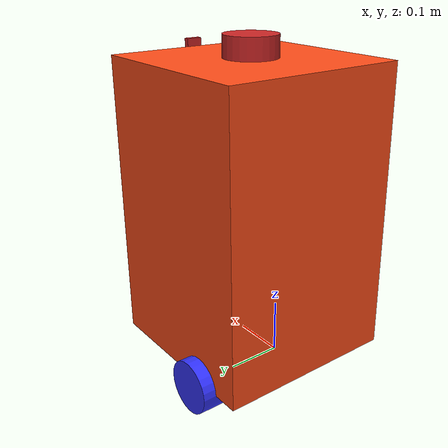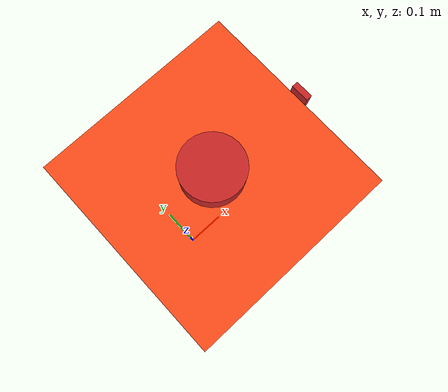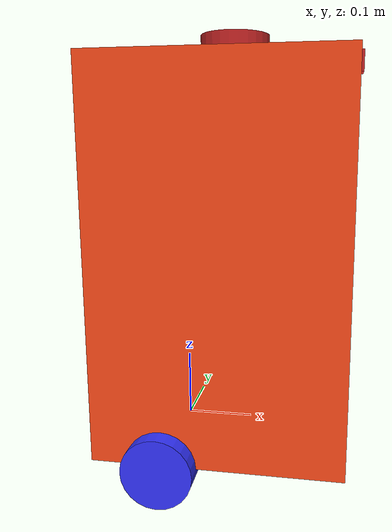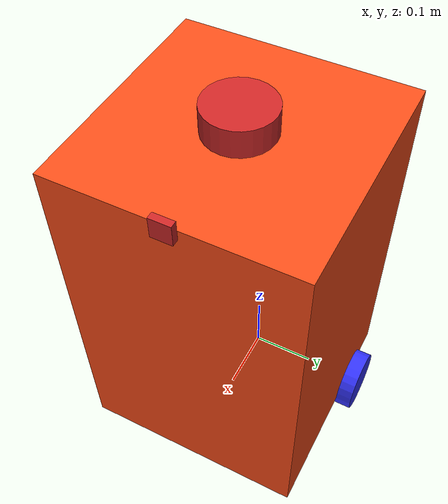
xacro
<?xml version="1.0"?>
<robot xmlns:xacro="http://www.ros.org/wiki/xacro"  name="robot">

    <!-- Include the robot's core body description file -->
    <xacro:include filename="robot_core.xacro" />

    <!-- Include the gazebo control plugin that controls driving -->
    <xacro:include filename="gazebo_control.xacro" />

    <!-- Include the lidar sensor -->
    <xacro:include filename="lidar.xacro" />

    <!-- Include the camera sensor -->
    <xacro:include filename="camera.xacro" />

    <!-- Include the gps sensor -->
    <xacro:include filename="gps.xacro" />

    <!-- Include the imu sensor -->
    <xacro:include filename="imu.xacro" />

</robot>

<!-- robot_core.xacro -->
<robot xmlns:xacro="http://www.ros.org/wiki/xacro" >

    <!-- INCLUDES -->

    <xacro:include filename="inertial_macros.xacro"/>
    <xacro:include filename="colors.xacro"/>
    <xacro:include filename="robot_params.xacro"/>

    <!-- BASE LINK -->

    <link name="base_link">

    </link>

    <!-- CHASSIS LINK -->

    <joint name="chassis_joint" type="fixed">
        <parent link="base_link"/>
        <child link="chassis"/>
        <origin xyz="${-wheel_offset_x} 0 0"/>
    </joint>

    <link name="chassis">
        <visual>
            <origin xyz="${chassis_length/2} 0 ${chassis_height/2}"/>
            <geometry>
                <box size="${chassis_length} ${chassis_width} ${chassis_height}"/>
            </geometry>
            <material name="orange"/>
        </visual>
        <collision>
            <origin xyz="${chassis_length/2} 0 ${chassis_height/2}"/>
            <geometry>
                <box size="${chassis_length} ${chassis_width} ${chassis_height}"/>
            </geometry>
        </collision>
        <xacro:inertial_box mass="${chassis_mass}" x="${chassis_length}" y="${chassis_width}" z="${chassis_height}">
            <origin xyz="${chassis_length/2} 0 ${chassis_height/2}" rpy="0 0 0"/>
        </xacro:inertial_box>
    </link>

    <gazebo reference="chassis">
        <material>Gazebo/TIT</material>
    </gazebo>

    <!-- LEFT WHEEL LINK -->

    <joint name="left_wheel_joint" type="continuous">
        <parent link="base_link"/>
        <child link="left_wheel"/>
        <origin xyz="0 ${wheel_offset_y} 0" rpy="-${pi/2} 0 0" />
        <axis xyz="0 0 1"/>
    </joint>

    <link name="left_wheel">
        <visual>
            <geometry>
                <cylinder radius="${wheel_radius}" length="${wheel_thickness}"/>
            </geometry>
            <material name="blue"/>
        </visual>
        <collision>
            <geometry>
                <cylinder radius="${wheel_radius}" length="${wheel_thickness}"/>
            </geometry>
        </collision>
        <xacro:inertial_cylinder mass="${wheel_mass}" length="${wheel_thickness}" radius="${wheel_radius}">
            <origin xyz="0 0 0" rpy="0 0 0"/>
        </xacro:inertial_cylinder>
    </link>

    <gazebo reference="left_wheel">
        <material>Gazebo/Blue</material>
    </gazebo>

    <!-- RIGHT WHEEL LINK -->

    <joint name="right_wheel_joint" type="continuous">
        <parent link="base_link"/>
        <child link="right_wheel"/>
        <origin xyz="0 ${-wheel_offset_y} 0" rpy="${pi/2} 0 0" />
        <axis xyz="0 0 -1"/>
    </joint>

    <link name="right_wheel">
        <visual>
            <geometry>
                <cylinder radius="${wheel_radius}" length="${wheel_thickness}"/>
            </geometry>
            <material name="blue"/>
        </visual>
        <collision>
            <geometry>
                <cylinder radius="${wheel_radius}" length="${wheel_thickness}"/>
            </geometry>
        </collision>
        <xacro:inertial_cylinder mass="${wheel_mass}" length="${wheel_thickness}" radius="${wheel_radius}">
            <origin xyz="0 0 0" rpy="0 0 0"/>
        </xacro:inertial_cylinder>
    </link>

    <gazebo reference="right_wheel">
        <material>Gazebo/Blue</material>
    </gazebo>

    <!-- CASTER WHEEL LINK -->

    <joint name="caster_wheel_joint" type="fixed">
        <parent link="chassis"/>
        <child link="caster_wheel"/>
        <origin xyz="${caster_wheel_offset_x} 0 0"/>
    </joint>

    <link name="caster_wheel">
        <visual>
            <geometry>
                <sphere radius="${caster_wheel_radius}"/>
            </geometry>
            <material name="white"/>
        </visual>
        <collision>
            <geometry>
                <sphere radius="${caster_wheel_radius}"/>
            </geometry>
        </collision>
        <xacro:inertial_sphere mass="${caster_wheel_mass}" radius="${caster_wheel_radius}">
            <origin xyz="0 0 0" rpy="0 0 0"/>
        </xacro:inertial_sphere>
    </link>

    <gazebo reference="caster_wheel">
        <material>Gazebo/White</material>
        <mu1 value="0.01"/>
        <mu2 value="0.01"/>
    </gazebo>

</robot>

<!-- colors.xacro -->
<robot xmlns:xacro="http://www.ros.org/wiki/xacro" >

    <material name="white">
        <color rgba="1 1 1 1" />
    </material>

    <material name="orange">
        <color rgba="1 0.3 0.1 1"/>
    </material>

    <material name="blue">
        <color rgba="0.2 0.2 1 1"/>
    </material>

    <material name="black">
        <color rgba="0 0 0 1"/>
    </material>

</robot>

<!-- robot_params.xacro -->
<robot xmlns:xacro="http://www.ros.org/wiki/xacro" >

    <!-- PARAMETERS -->

    <!-- Robot Physical Dimensions -->
    <xacro:property name="chassis_length" value="0.35"/>
    <xacro:property name="chassis_width" value="0.35"/>
    <xacro:property name="chassis_height" value="0.55"/>
    <xacro:property name="chassis_mass" value="0.8"/>

    <xacro:property name="wheel_mass" value="0.05"/>
    <xacro:property name="wheel_radius" value="0.05"/>
    <xacro:property name="wheel_diameter" value="${wheel_radius * 2}"/>
    <xacro:property name="wheel_thickness" value="0.05"/>
    <xacro:property name="wheel_offset_x" value="0.1"/>
    <xacro:property name="wheel_offset_y" value="0.175"/>
    <xacro:property name="wheel_separation" value="${wheel_offset_y * 2}"/>

    <xacro:property name="caster_wheel_offset_x" value="0.24"/>
    <xacro:property name="caster_wheel_radius" value="0.05"/>
    <xacro:property name="caster_wheel_mass" value="0.1"/>

    <!-- LiDAR Parameters -->
    <xacro:property name="laser_mass" value="0.1"/>
    <xacro:property name="laser_length" value="0.04"/>
    <xacro:property name="laser_radius" value="0.05"/>
    <xacro:property name="laser_update_rate" value="5"/>
    <xacro:property name="laser_samples" value="360"/>
    <xacro:property name="laser_min_angle" value="-3.14"/>
    <xacro:property name="laser_max_angle" value="3.14"/>
    <xacro:property name="laser_min_range" value="0.2"/>
    <xacro:property name="laser_max_range" value="12"/>
    <xacro:property name="laser_noise_mean" value="0.0"/>
    <xacro:property name="laser_noise_stddev" value="0.01"/>

    <!-- Camera Parameters -->
    <xacro:property name="camera_mass" value="0.03"/>
    <xacro:property name="camera_length" value="0.01"/>
    <xacro:property name="camera_width" value="0.03"/>
    <xacro:property name="camera_height" value="0.03"/>
    <xacro:property name="camera_update_rate" value="5"/>
    <xacro:property name="camera_horizontal_fov" value="1.089"/>
    <xacro:property name="camera_image_width" value="640"/>
    <xacro:property name="camera_image_height" value="480"/>
    <xacro:property name="camera_clip_near" value="0.1"/>
    <xacro:property name="camera_clip_far" value="20.0"/>

    <!-- GPS Parameters -->
    <xacro:property name="gps_mass" value="0.05"/>
    <xacro:property name="gps_update_rate" value="1"/>
    <xacro:property name="gps_noise_stddev" value="0.01"/>

    <!-- IMU Parameters -->
    <xacro:property name="imu_mass" value="0.05"/>
    <xacro:property name="imu_update_rate" value="200"/>
    <xacro:property name="imu_angular_velocity_stddev" value="2e-4"/>
    <xacro:property name="imu_linear_acceleration_stddev" value="1.7e-2"/>

</robot>

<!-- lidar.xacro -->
<robot xmlns:xacro="http://www.ros.org/wiki/xacro" >

    <xacro:include filename="robot_params.xacro"/>

    <joint name="laser_joint" type="fixed">
        <parent link="chassis"/>
        <child link="laser_link"/>
        <origin xyz="${chassis_length/2} 0 ${chassis_height + laser_length/2}" rpy="0 0 0"/>
    </joint>

    <link name="laser_link">
        <visual>
            <geometry>
                <cylinder radius="${laser_radius}" length="${laser_length}"/>
            </geometry>
            <material name="red"/>
        </visual>
        <collision>
            <geometry>
                <cylinder radius="${laser_radius}" length="${laser_length}"/>
            </geometry>
        </collision>
        <xacro:inertial_cylinder mass="${laser_mass}" length="${laser_length}" radius="${laser_radius}">
            <origin xyz="0 0 0" rpy="0 0 0"/>
        </xacro:inertial_cylinder>
    </link>

    <gazebo reference="laser_link">
        <material>Gazebo/Red</material>

        <sensor name="laser" type="ray">
            <pose> 0 0 0 0 0 0 </pose>
            <visualize>true</visualize>
            <update_rate>${laser_update_rate}</update_rate>
            <ray>
                <scan>
                    <horizontal>
                        <samples>${laser_samples}</samples>
                        <min_angle>${laser_min_angle}</min_angle>
                        <max_angle>${laser_max_angle}</max_angle>
                    </horizontal>
                </scan>
                <range>
                    <min>${laser_min_range}</min>
                    <max>${laser_max_range}</max>
                </range>
            </ray>
            <plugin name="laser_controller" filename="libgazebo_ros_ray_sensor.so">
                <ros>
                    <remapping>~/out:=scan</remapping>
                </ros>
                <output_type>sensor_msgs/LaserScan</output_type>
                <frame_name>laser_link</frame_name>
            </plugin>
        </sensor>
    </gazebo>

</robot>

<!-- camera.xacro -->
<robot xmlns:xacro="http://www.ros.org/wiki/xacro" >

    <xacro:include filename="robot_params.xacro"/>

    <joint name="camera_joint" type="fixed">
        <parent link="chassis"/>
        <child link="camera_link"/>
        <origin xyz="${chassis_length + camera_length/2} 0 ${chassis_height}" rpy="0 0 0"/>
    </joint>

    <link name="camera_link">
        <visual>
            <geometry>
                <box size="${camera_length} ${camera_width} ${camera_height}"/>
            </geometry>
            <material name="red"/>
        </visual>
        <collision>
            <geometry>
                <box size="${camera_length} ${camera_width} ${camera_height}"/>
            </geometry>
        </collision>
    </link>

    <joint name="camera_optical_joint" type="fixed">
        <parent link="camera_link"/>
        <child link="camera_optical_link"/>
        <origin xyz="0 0 0" rpy="${-pi/2} 0 ${-pi/2}"/>
    </joint>

    <link name="camera_optical_link"></link>

    <gazebo reference="camera_link">
        <material>Gazebo/Red</material>

        <sensor name="camera" type="camera">
            <pose> 0 0 0 0 0 0 </pose>
            <visualize>false</visualize>
            <update_rate>${camera_update_rate}</update_rate>
            <camera>
                <horizontal_fov>${camera_horizontal_fov}</horizontal_fov>

                <image>
                    <format>R8G8B8</format>
                    <width>${camera_image_width}</width>
                    <height>${camera_image_height}</height>
                </image>
                <clip>
                    <near>${camera_clip_near}</near>
                    <far>${camera_clip_far}</far>
                </clip>
            </camera>
            <plugin name="camera_controller" filename="libgazebo_ros_camera.so">
                <frame_name>camera_optical_link</frame_name>
            </plugin>
        </sensor>
    </gazebo>

</robot>

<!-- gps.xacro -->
<robot xmlns:xacro="http://www.ros.org/wiki/xacro" >

    <xacro:include filename="inertial_macros.xacro"/>
    <xacro:include filename="robot_params.xacro"/>

    <joint name="gps_joint" type="fixed">
        <parent link="chassis"/>
        <child link="gps_link"/>
        <origin xyz="${chassis_length/2} 0 ${chassis_length/2}" rpy="0 0 0"/>
        <axis>
          <xyz>0 0 1</xyz>
        </axis>
    </joint>

    <link name="gps_link">
        <visual>
            <origin xyz="0 0 0" rpy="0 0 0"/>
            <geometry>
                <box size="0.01 0.01 0.01"/>
            </geometry>
        </visual>
        <collision>
            <origin xyz="0 0 0" rpy="0 0 0"/>
            <geometry>
                <box size="0.01 0.01 0.01"/>
            </geometry>
        </collision>
        <xacro:inertial_box mass="0.125" x="0.01" y="0.01" z="0.01">
            <origin xyz="-0.052 0 0.111" rpy="0 0 0"/>
        </xacro:inertial_box>

    </link>

    <gazebo reference="gps_link">
        <sensor name="gps" type="gps">
          <always_on>true</always_on>
          <update_rate>1</update_rate>
          <pose>0 0 0 0 0 0</pose>
          <gps>
            <position_sensing>
              <horizontal>
                <noise type="gaussian">
                  <mean>0.0</mean>
                  <stddev>0.01</stddev>
                </noise>
              </horizontal>
              <vertical>
                <noise type="gaussian">
                  <mean>0.0</mean>
                  <stddev>0.01</stddev>
                </noise>
              </vertical>
            </position_sensing>
          </gps>
          <plugin name="gps_plugin" filename="libgazebo_ros_gps_sensor.so">
            <ros>
              <remapping>~/out:=/gps/fix</remapping>
            </ros>
          </plugin>
        </sensor>
    </gazebo>

</robot>

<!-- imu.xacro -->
<robot xmlns:xacro="http://www.ros.org/wiki/xacro" >

    <xacro:include filename="robot_params.xacro"/>
    <joint name="imu_joint" type="fixed">
        <parent link="chassis"/>
        <child link="imu_link"/>
        <origin xyz="${chassis_length/2} 0 ${chassis_length/2}" rpy="0 0 0"/>
        <axis>
          <xyz>0 0 1</xyz>
        </axis>
    </joint>

    <link name="imu_link">
    </link>

    <gazebo reference="imu_link">
        <sensor name="imu" type="imu">
          <always_on>true</always_on>
          <update_rate>200</update_rate>
          <imu>
            <angular_velocity>
              <x>
                <noise type="gaussian">
                  <mean>0.0</mean>
                  <stddev>2e-4</stddev>
                </noise>
              </x>
              <y>
                <noise type="gaussian">
                  <mean>0.0</mean>
                  <stddev>2e-4</stddev>
                </noise>
              </y>
              <z>
                <noise type="gaussian">
                  <mean>0.0</mean>
                  <stddev>2e-4</stddev>
                </noise>
              </z>
            </angular_velocity>
            <linear_acceleration>
              <x>
                <noise type="gaussian">
                  <mean>0.0</mean>
                  <stddev>1.7e-2</stddev>
                </noise>
              </x>
              <y>
                <noise type="gaussian">
                  <mean>0.0</mean>
                  <stddev>1.7e-2</stddev>
                </noise>
              </y>
              <z>
                <noise type="gaussian">
                  <mean>0.0</mean>
                  <stddev>1.7e-2</stddev>
                </noise>
              </z>
            </linear_acceleration>
          </imu>
          <plugin name="imu_plugin" filename="libgazebo_ros_imu_sensor.so">
            <initial_orientation_as_reference>false</initial_orientation_as_reference>
            <ros>
              <remapping>~/out:=imu</remapping>
              </ros>
          </plugin>
        </sensor>
    </gazebo>

</robot>
